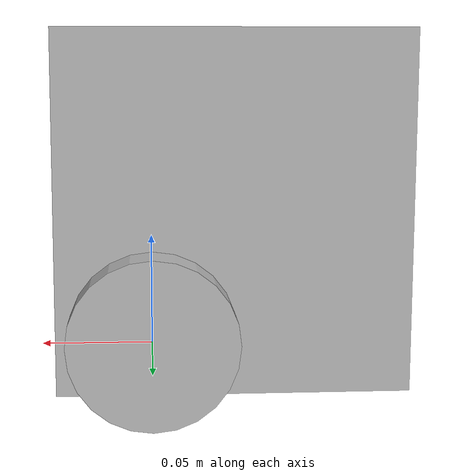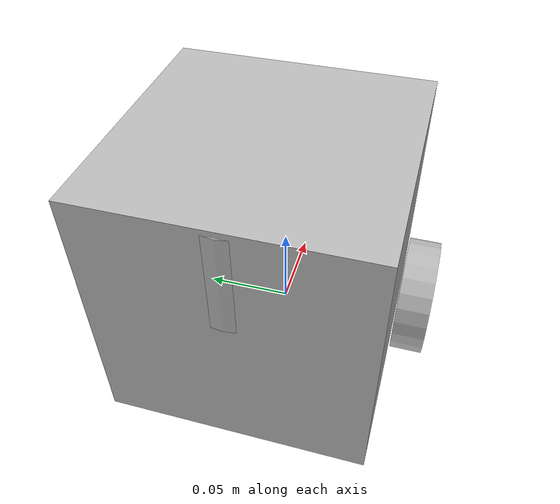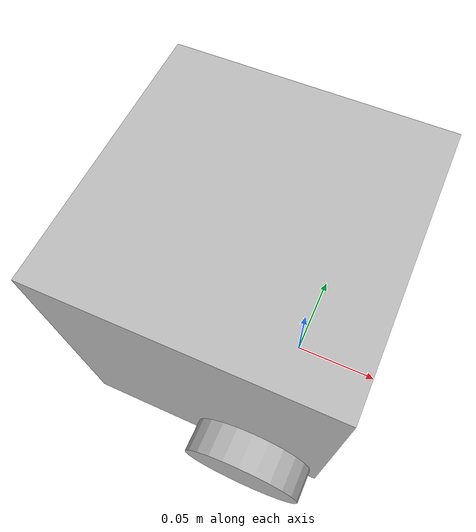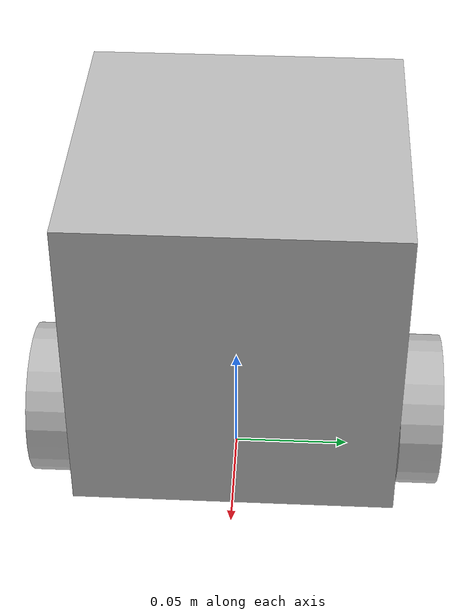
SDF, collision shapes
<?xml version="1.0" ?>
<sdf version="1.6">
  <model name="turtlebot3_burger">
    <pose>0 0 0 0 0 0</pose>

    <link name="base_footprint"/>

    <link name="base_link">
      <inertial>
        <pose>-0.032 0 0.070 0 0 0</pose>
        <inertia>
          <ixx>8.7002718e-03</ixx>
          <ixy>-4.7576583e-05</ixy>
          <ixz>1.1160499e-04</ixz>
          <iyy>8.6195418e-03</iyy>
          <iyz>-3.5422299e-06</iyz>
          <izz>1.4612727e-02</izz>
        </inertia>
        <mass>8.2573504e-01</mass>
      </inertial>

      <collision name="base_collision">
        <pose>-0.032 0 0.070 0 0 0</pose>
        <geometry>
          <box>
            <size>0.140 0.140 0.143</size>
          </box>
        </geometry>
      </collision>

      <visual name="base_visual">
        <pose>-0.032 0 0.0 0 0 0</pose>
        <geometry>
          <mesh>
            <uri>model://turtlebot3_burger/meshes/burger_base.dae</uri>
            <scale>0.001 0.001 0.001</scale>
          </mesh>
        </geometry>
      </visual>
    </link>

    <joint name="base_joint" type="fixed">
      <parent>base_footprint</parent>
      <child>base_link</child>
      <pose>0.0 0.0 0.010 0 0 0</pose>
    </joint>

    <link name="wheel_left_link">
      <inertial>
        <pose>0 0.08 0.023 -1.57 0 0</pose>
        <inertia>
          <ixx>1.1175580e-05</ixx>
          <ixy>-4.2369783e-11</ixy>
          <ixz>-5.9381719e-09</ixz>
          <iyy>1.1192413e-05</iyy>
          <iyz>-1.4400107e-11</iyz>
          <izz>2.0712558e-05</izz>
        </inertia>
        <mass>2.8498940e-02</mass>
      </inertial>

      <collision name="wheel_left_collision">
        <pose>0.0 0.08 0.023 -1.57 0 0</pose>
        <geometry>
          <cylinder>
            <radius>0.033</radius>
            <length>0.018</length>
          </cylinder>
        </geometry>
        <surface>
          <friction>
            <ode>
              <mu>100000.0</mu>
              <mu2>100000.0</mu2>
              <fdir1>0 0 0</fdir1>
              <slip1>0.0</slip1>
              <slip2>0.0</slip2>
            </ode>
          </friction>
        </surface>
      </collision>

      <visual name="wheel_left_visual">
        <pose>0.0 0.08 0.023 0 0 0</pose>
        <geometry>
          <mesh>
            <uri>model://turtlebot3_burger/meshes/left_tire.dae</uri>
            <scale>0.001 0.001 0.001</scale>
          </mesh>
        </geometry>
      </visual>
    </link>

    <joint name="wheel_left_joint" type="revolute">
      <parent>base_link</parent>
      <child>wheel_left_link</child>
      <pose>0.0 0.08 0.023 0 0 0</pose>
      <axis>
        <xyz>0 1 0</xyz>
      </axis>
    </joint>

    <link name="wheel_right_link">
      <inertial>
        <pose>0.0 -0.08 0.023 -1.57 0 0</pose>
        <inertia>
          <ixx>1.1175580e-05</ixx>
          <ixy>-4.2369783e-11</ixy>
          <ixz>-5.9381719e-09</ixz>
          <iyy>1.1192413e-05</iyy>
          <iyz>-1.4400107e-11</iyz>
          <izz>2.0712558e-05</izz>
        </inertia>
        <mass>2.8498940e-02</mass>
      </inertial>

      <collision name="wheel_right_collision">
        <pose>0.0 -0.08 0.023 -1.57 0 0</pose>
        <geometry>
          <cylinder>
            <radius>0.033</radius>
            <length>0.018</length>
          </cylinder>
        </geometry>
        <surface>
          <friction>
            <ode>
              <mu>100000.0</mu>
              <mu2>100000.0</mu2>
              <fdir1>0 0 0</fdir1>
              <slip1>0.0</slip1>
              <slip2>0.0</slip2>
            </ode>
          </friction>
        </surface>
      </collision>

      <visual name="wheel_right_visual">
        <pose>0.0 -0.08 0.023 0 0 0</pose>
        <geometry>
          <mesh>
            <uri>model://turtlebot3_burger/meshes/right_tire.dae</uri>
            <scale>0.001 0.001 0.001</scale>
          </mesh>
        </geometry>
      </visual>
    </link>

    <joint name="wheel_right_joint" type="revolute">
      <parent>base_link</parent>
      <child>wheel_right_link</child>
      <pose>0.0 -0.08 0.023 0 0 0</pose>
      <axis>
        <xyz>0 1 0</xyz>
      </axis>
    </joint>

    <link name='caster_back_link'>
      <pose>-0.081 0 -0.004 -1.57 0 0</pose>
      <inertial>
        <inertia>
          <ixx>0.00001</ixx>
          <ixy>0.000</ixy>
          <ixz>0.000</ixz>
          <iyy>0.00001</iyy>
          <iyz>0.000</iyz>
          <izz>0.00001</izz>
        </inertia>
        <mass>0.005</mass>
      </inertial>
      <collision name='collision'>
        <geometry>
          <sphere>
            <radius>0.005000</radius>
          </sphere>
        </geometry>
        <surface>
          <contact>
            <ode>
              <soft_cfm>0.01</soft_cfm>
            </ode>
          </contact>
          <friction>
            <ode>
              <mu>0.0</mu>
              <mu2>0.0</mu2>
              <slip1>1.0</slip1>
              <slip2>1.0</slip2>
            </ode>
          </friction>
        </surface>
      </collision>
    </link>

    <joint name='caster_back_joint' type='ball'>
      <parent>base_link</parent>
      <child>caster_back_link</child>
    </joint>

    <link name="imu_link">
      <sensor name="tb3_imu" type="imu">
        <always_on>true</always_on>
        <update_rate>200</update_rate>
        <imu>
          <angular_velocity>
            <x><noise type="gaussian"><mean>0.0</mean><stddev>2e-4</stddev></noise></x>
            <y><noise type="gaussian"><mean>0.0</mean><stddev>2e-4</stddev></noise></y>
            <z><noise type="gaussian"><mean>0.0</mean><stddev>2e-4</stddev></noise></z>
          </angular_velocity>
          <linear_acceleration>
            <x><noise type="gaussian"><mean>0.0</mean><stddev>1.7e-2</stddev></noise></x>
            <y><noise type="gaussian"><mean>0.0</mean><stddev>1.7e-2</stddev></noise></y>
            <z><noise type="gaussian"><mean>0.0</mean><stddev>1.7e-2</stddev></noise></z>
          </linear_acceleration>
        </imu>
        <plugin name="turtlebot3_imu" filename="libgazebo_ros_imu_sensor.so">
          <ros>
            <remapping>~/out:=imu</remapping>
          </ros>
          <initial_orientation_as_reference>false</initial_orientation_as_reference>
        </plugin>
      </sensor>
    </link>

    <joint name="imu_joint" type="fixed">
      <parent>base_link</parent>
      <child>imu_link</child>
      <pose>-0.032 0 0.068 0 0 0</pose>
    </joint>

    <link name="base_scan">
      <inertial>
        <pose>-0.052 0 0.111 0 0 0</pose>
        <inertia>
          <ixx>0.001</ixx>
          <ixy>0.000</ixy>
          <ixz>0.000</ixz>
          <iyy>0.001</iyy>
          <iyz>0.000</iyz>
          <izz>0.001</izz>
        </inertia>
        <mass>0.114</mass>
      </inertial>

      <collision name="lidar_sensor_collision">
        <pose>-0.052 0 0.111 0 0 0</pose>
        <geometry>
          <cylinder>
            <radius>0.0508</radius>
            <length>0.055</length>
          </cylinder>
        </geometry>
      </collision>

      <visual name="lidar_sensor_visual">
        <pose>-0.064 0 0.121 0 0 0</pose>
        <geometry>
          <mesh>
            <uri>model://turtlebot3_burger/meshes/lds.dae</uri>
            <scale>0.001 0.001 0.001</scale>
          </mesh>
        </geometry>
      </visual>

      <sensor name="hls_lfcd_lds" type="ray">
        <always_on>true</always_on>
        <visualize>false</visualize>
        <pose>-0.064 0 0.121 0 0 0</pose>
        <update_rate>5</update_rate>
        <ray>
          <scan>
            <horizontal>
              <samples>360</samples>
              <resolution>1.000000</resolution>
              <min_angle>0.000000</min_angle>
              <max_angle>6.280000</max_angle>
            </horizontal>
          </scan>
          <range>
            <min>0.120000</min>
            <max>3.5</max>
            <resolution>0.015000</resolution>
          </range>
          <noise>
            <type>gaussian</type>
            <mean>0.0</mean>
            <stddev>0.01</stddev>
          </noise>
        </ray>
        <plugin name="turtlebot3_laserscan" filename="libgazebo_ros_ray_sensor.so">
          <ros>
            <remapping>~/out:=scan</remapping>
          </ros>
          <output_type>sensor_msgs/LaserScan</output_type>
          <frame_name>__FRAME_PREFIX__base_scan</frame_name>
        </plugin>
      </sensor>
    </link>

    <joint name="lidar_joint" type="fixed">
      <parent>base_link</parent>
      <child>base_scan</child>
      <pose>-0.052 0 0.111 0 0 0</pose>
    </joint>

    <plugin name="turtlebot3_diff_drive" filename="libgazebo_ros_diff_drive.so">
      <ros></ros>

      <update_rate>30</update_rate>

      <left_joint>wheel_left_joint</left_joint>
      <right_joint>wheel_right_joint</right_joint>

      <wheel_separation>0.160</wheel_separation>
      <wheel_diameter>0.066</wheel_diameter>

      <max_wheel_torque>20</max_wheel_torque>
      <max_wheel_acceleration>1.0</max_wheel_acceleration>

      <command_topic>cmd_vel</command_topic>

      <publish_odom>true</publish_odom>
      <publish_odom_tf>true</publish_odom_tf>
      <publish_wheel_tf>false</publish_wheel_tf>

      <odometry_topic>odom</odometry_topic>
      <odometry_frame>__FRAME_PREFIX__odom</odometry_frame>
      <robot_base_frame>__FRAME_PREFIX__base_footprint</robot_base_frame>
    </plugin>

    <plugin name="turtlebot3_joint_state" filename="libgazebo_ros_joint_state_publisher.so">
      <ros>
        <remapping>~/out:=joint_states</remapping>
      </ros>
      <update_rate>30</update_rate>
      <joint_name>wheel_left_joint</joint_name>
      <joint_name>wheel_right_joint</joint_name>
    </plugin>

  </model>
</sdf>
